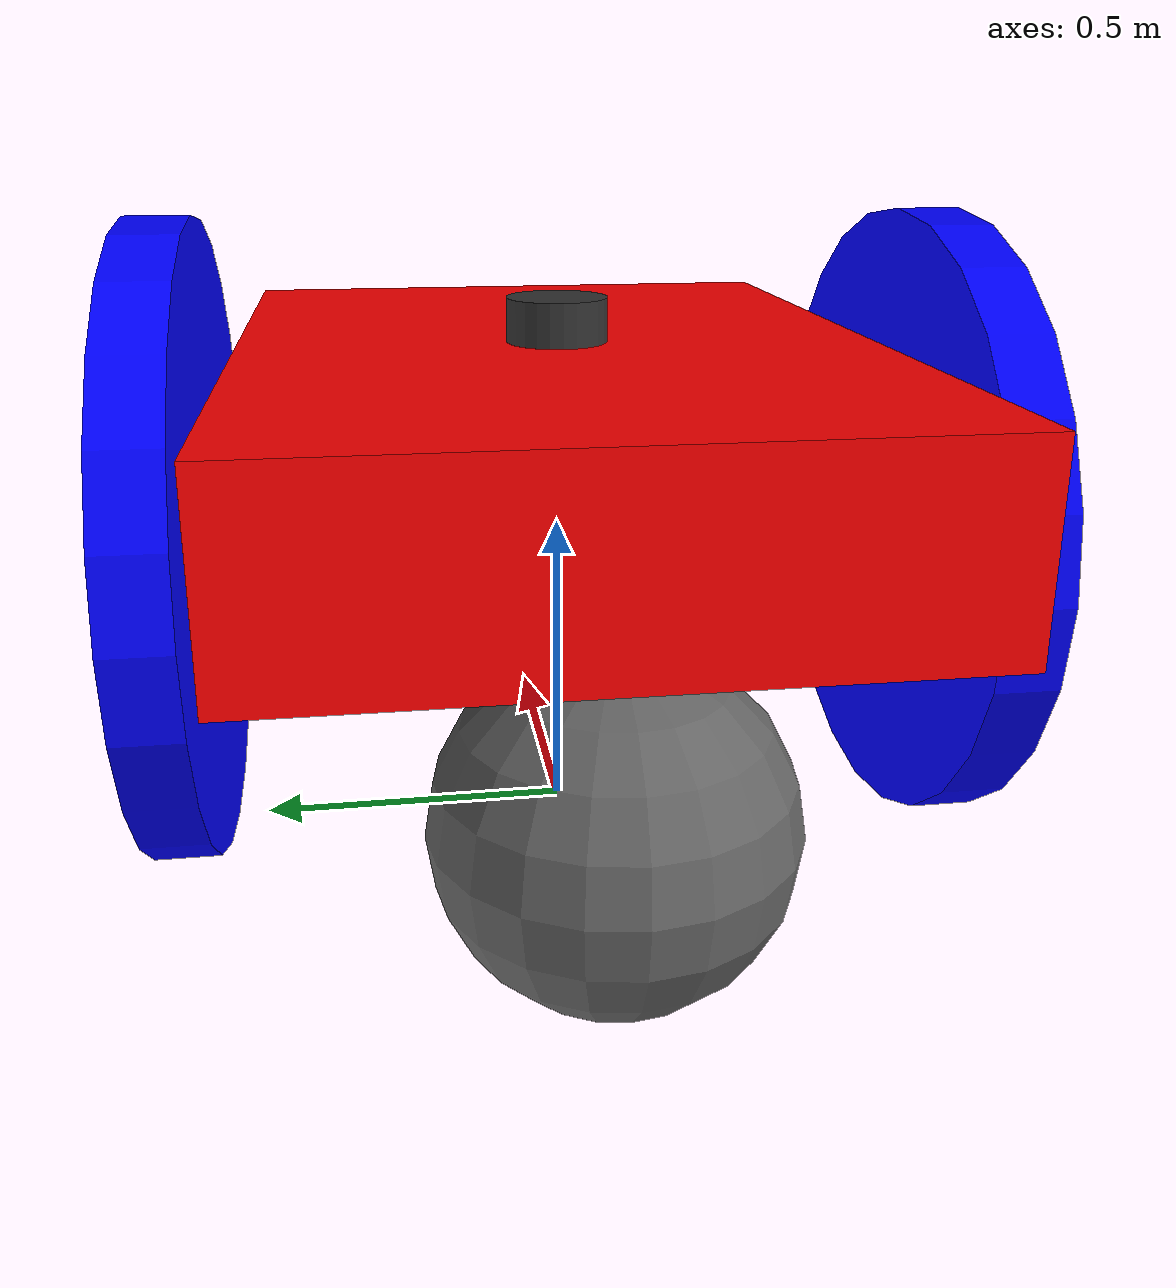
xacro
<?xml version="1.0"?>
<robot name="walle">
<!--BASE LINK-->
  <link name="base_link">
    <visual>
      <geometry><box size="1.4 1.0 0.3"/></geometry>
      <origin xyz="0 0 0.65" rpy="0 0 0"/>
      <material name="red"><color rgba="1.0 0.0 0.0 1.0"/></material>
    </visual>
    <collision>
      <geometry><box size="1.4 1.0 0.3"/></geometry>
      <origin xyz="0 0 0.65" rpy="0 0 0"/>
    </collision>
    <inertial>
      <mass value="5.0"/>
      <origin xyz="0 0 0.65" rpy="0 0 0"/>
      <inertia ixx="0.454" ixy="0.0" ixz="0.0"
               iyy="0.854" iyz="0.0"
               izz="1.233"/>
    </inertial>
  </link>
<!-- LEFT WHEEL -->
  <link name="left_wheel">
    <visual>
      <geometry><cylinder radius="0.5" length="0.1"/></geometry>
      <material name="blue"><color rgba="0.0 0.0 1.0 1.0"/></material>
    </visual>
    <collision><geometry><cylinder radius="0.5" length="0.1"/></geometry></collision>
    <inertial>
      <mass value="0.5"/>
      <inertia ixx="0.0317" ixy="0.0" ixz="0.0"
               iyy="0.0317" iyz="0.0"
               izz="0.0625"/>
    </inertial>
  </link>
<!-- LEFT WHEEL JOINT -->
  <joint name="left_wheel_joint" type="continuous">
    <parent link="base_link"/>
    <child link="left_wheel"/>
    <origin xyz="0 0.6 0.5" rpy="-1.5708 0 0"/>
    <axis xyz="0 0 1"/>
  </joint>
<!-- RIGHT WHEEL -->
  <link name="right_wheel">
    <visual>
      <geometry><cylinder radius="0.5" length="0.1"/></geometry>
      <material name="blue"><color rgba="0.0 0.0 1.0 1.0"/></material>
    </visual>
    <collision><geometry><cylinder radius="0.5" length="0.1"/></geometry></collision>
    <inertial>
      <mass value="0.5"/>
      <inertia ixx="0.0317" ixy="0.0" ixz="0.0"
               iyy="0.0317" iyz="0.0"
               izz="0.0625"/>
    </inertial>
  </link>
<!-- RIGHT WHEEL JOINT -->
  <joint name="right_wheel_joint" type="continuous">
    <parent link="base_link"/>
    <child link="right_wheel"/>
    <origin xyz="0 -0.6 0.5" rpy="-1.5708 0 0"/>
    <axis xyz="0 0 1"/>
  </joint>
<!-- CASTER WHEEL -->
  <link name="caster_wheel">
    <visual>
      <geometry><sphere radius="0.25"/></geometry>
      <material name="grey"><color rgba="0.4 0.4 0.4 1.0"/></material>
    </visual>
    <collision><geometry><sphere radius="0.25"/></geometry></collision>
    <inertial>
      <mass value="0.1"/>
      <inertia ixx="0.0025" ixy="0.0" ixz="0.0"
               iyy="0.0025" iyz="0.0"
               izz="0.0025"/>
    </inertial>
  </link>
<!-- CASTER WHEEL JOINT -->
  <joint name="caster_joint" type="fixed">
    <parent link="base_link"/>
    <child link="caster_wheel"/>
    <origin xyz="0.55 0 0.25" rpy="0 0 0"/>
  </joint>
<!-- REAR CASTER WHEEL -->
  <link name="rear_caster_wheel">
    <visual>
      <geometry><sphere radius="0.25"/></geometry>
      <material name="grey"><color rgba="0.4 0.4 0.4 1.0"/></material>
    </visual>
    <collision><geometry><sphere radius="0.25"/></geometry></collision>
    <inertial>
      <mass value="0.1"/>
      <inertia ixx="0.0025" ixy="0.0" ixz="0.0"
               iyy="0.0025" iyz="0.0"
               izz="0.0025"/>
    </inertial>
  </link>
<!-- REAR CASTER WHEEL JOINT -->
  <joint name="rear_caster_joint" type="fixed">
    <parent link="base_link"/>
    <child link="rear_caster_wheel"/>
    <origin xyz="-0.55 0 0.25" rpy="0 0 0"/>
  </joint>
<!-- CAMERA -->
  <link name="camera_link">
    <visual>
      <geometry><box size="0.05 0.15 0.08"/></geometry>
      <material name="black"><color rgba="0.05 0.05 0.05 1.0"/></material>
    </visual>
    <collision><geometry><box size="0.05 0.15 0.08"/></geometry></collision>
    <inertial>
      <mass value="0.05"/>
      <inertia ixx="0.0001" ixy="0.0" ixz="0.0"
               iyy="0.0001" iyz="0.0"
               izz="0.0001"/>
    </inertial>
  </link>
<!-- CAMERA JOINT -->
  <joint name="camera_joint" type="fixed">
    <parent link="base_link"/>
    <child link="camera_link"/>
    <origin xyz="0.725 0 0.65" rpy="0 0 0"/>
  </joint>
<!-- LIDAR -->
  <link name="lidar_link">
    <visual>
      <geometry><cylinder radius="0.08" length="0.07"/></geometry>
      <material name="dark_grey"><color rgba="0.2 0.2 0.2 1.0"/></material>
    </visual>
    <collision><geometry><cylinder radius="0.08" length="0.07"/></geometry></collision>
    <inertial>
      <mass value="0.1"/>
      <inertia ixx="0.0001" ixy="0.0" ixz="0.0"
               iyy="0.0001" iyz="0.0"
               izz="0.0001"/>
    </inertial>
  </link>
<!-- LIDAR JOINT -->
  <joint name="lidar_joint" type="fixed">
    <parent link="base_link"/>
    <child link="lidar_link"/>
    <origin xyz="0 0 0.835" rpy="0 0 0"/>
  </joint>

  <!-- DIFFERENTIAL DRIVE PLUGIN -->
  <gazebo>
    <plugin filename="gz-sim-diff-drive-system"
            name="gz::sim::systems::DiffDrive">
      <left_joint>left_wheel_joint</left_joint>
      <right_joint>right_wheel_joint</right_joint>
      <wheel_separation>1.2</wheel_separation>
      <wheel_radius>0.5</wheel_radius>
      <odom_publish_frequency>50</odom_publish_frequency>
      <topic>cmd_vel</topic>
      <odom_topic>odom</odom_topic>
      <tf_topic>tf</tf_topic>
      <frame_id>odom</frame_id>
      <child_frame_id>base_link</child_frame_id>
    </plugin>
  </gazebo>

  <!-- Camera sensor -->
  <gazebo reference="camera_link">
    <sensor name="camera" type="camera">
      <topic>camera/image</topic>
      <update_rate>30</update_rate>
      <always_on>1</always_on>
      <visualize>true</visualize>
      <camera>
        <horizontal_fov>1.047</horizontal_fov>
        <image>
          <width>640</width>
          <height>480</height>
          <format>R8G8B8</format>
        </image>
        <clip>
          <near>0.1</near>
          <far>100</far>
        </clip>
      </camera>
    </sensor>
  </gazebo>

  <!-- 2D Lidar sensor -->
  <gazebo reference="lidar_link">
    <sensor name="lidar" type="gpu_lidar">
      <topic>scan</topic>
      <update_rate>10</update_rate>
      <always_on>1</always_on>
      <visualize>true</visualize>
      <lidar>
        <scan>
          <horizontal>
            <samples>360</samples>
            <resolution>1</resolution>
            <min_angle>-3.14159</min_angle>
            <max_angle>3.14159</max_angle>
          </horizontal>
        </scan>
        <range>
          <min>0.2</min>
          <max>30.0</max>
          <resolution>0.01</resolution>
        </range>
      </lidar>
    </sensor>
  </gazebo>

  <!-- Wheel friction -->
  <gazebo reference="left_wheel">
    <mu1>1.0</mu1><mu2>1.0</mu2>
  </gazebo>
  <gazebo reference="right_wheel">
    <mu1>1.0</mu1><mu2>1.0</mu2>
  </gazebo>

  <!-- Caster friction -->
  <gazebo reference="caster_wheel">
    <mu1>0.0</mu1><mu2>0.0</mu2>
  </gazebo>
  <gazebo reference="rear_caster_wheel">
    <mu1>0.0</mu1><mu2>0.0</mu2>
  </gazebo>
</robot>
